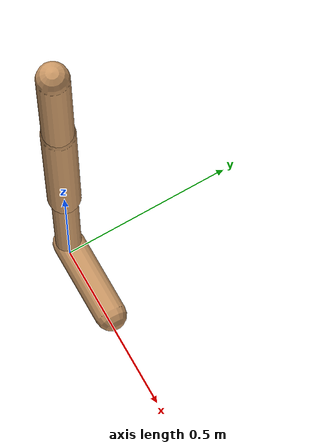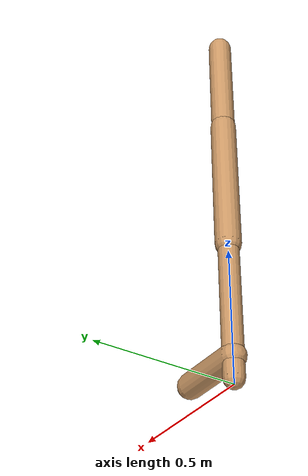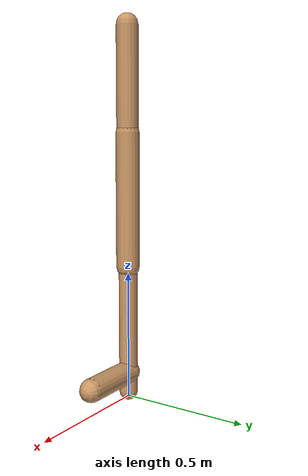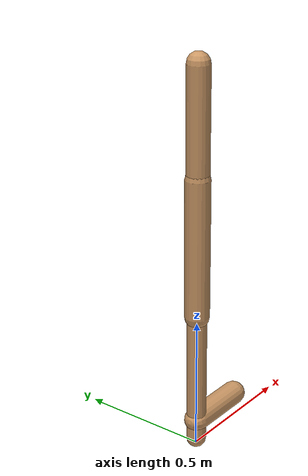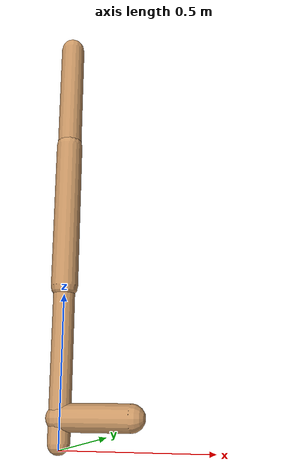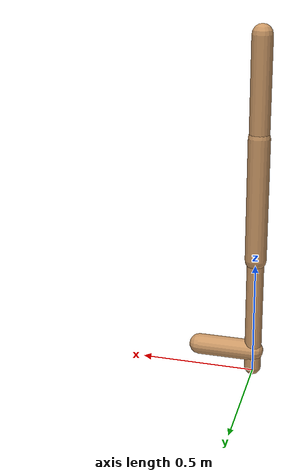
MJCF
<mujoco model="walker2d">
  <compiler angle="degree" coordinate="global" inertiafromgeom="true" />
  <default>
    <joint armature="0.01" damping=".1" limited="true" />
    <geom conaffinity="0" condim="3" contype="1" density="1000" friction="0.8 .1 .1" rgba="0.8 0.6 .4 1" />
  </default>
  <option integrator="RK4" timestep="0.002" />
  <worldbody>

    <body name="torso" pos="0 0 0.14875066055504363">
      <joint armature="0" axis="1 0 0" damping="0" limited="false" name="ignorex" pos="0 0 0" stiffness="0" type="slide" />
      <joint armature="0" axis="0 0 1" damping="0" limited="false" name="ignorez" pos="0 0 0" ref="1.25" stiffness="0" type="slide" />
      <joint armature="0" axis="0 1 0" damping="0" limited="false" name="ignorey" pos="0 0 0" stiffness="0" type="hinge" />
      <geom fromto="0 0 1.45 0 0 1.05" name="torso_geom" size="0.04220514203630125" type="capsule" />
      <body name="thigh">
        <joint axis="0 -1 0" name="thigh_joint" pos="0 0 1.05" range="-150 0" type="hinge" />
        <geom fromto="0.0 0.0 1.05 0.0 0.0 0.5295391607897162" name="thigh_geom" size="0.04578184803139732" type="capsule" />
        <body name="leg" pos="0.0 0.0 -0.07046083921028379">
          <joint axis="0 -1 0" name="leg_joint" pos="0 0 0.6" range="-150 0" type="hinge" />
          <geom fromto="0.0 0.0 0.6 0.0 0.0 0.021710178655240206" name="leg_geom" size="0.03662547842511786" type="capsule" />
          <body name="foot" pos="0.0 0.0 -0.0782898213447598">
            <joint axis="0 -1 0" name="foot_joint" pos="0 0 0.1" range="-45 45" type="hinge" />
            <geom fromto="-0.0 0.0 0.1 0.2395137494062104 0.0 0.1" name="foot_geom" size="0.045095413585556826" type="capsule" />
          </body>
        </body>
      </body>

      <body name="thigh_left">
        <joint axis="0 -1 0" name="thigh_left_joint" pos="0 0 1.05" range="-150 0" type="hinge" />
        <geom fromto="0.0 0.0 1.05 0.0 0.0 0.5295391607897162" name="thigh_left_geom" rgba=".7 .3 .6 1" size="0.04578184803139732" type="capsule" />
        <body name="leg_left" pos="0.0 0.0 -0.07046083921028379">
          <joint axis="0 -1 0" name="leg_left_joint" pos="0 0 0.6" range="-150 0" type="hinge" />
          <geom fromto="0.0 0.0 0.6 0.0 0.0 0.021710178655240206" name="leg_left_geom" rgba=".7 .3 .6 1" size="0.03662547842511786" type="capsule" />
          <body name="foot_left" pos="0.0 0.0 -0.0782898213447598">
            <joint axis="0 -1 0" name="foot_left_joint" pos="0 0 0.1" range="-45 45" type="hinge" />
            <geom fromto="-0.0 0.0 0.1 0.2395137494062104 0.0 0.1" name="foot_left_geom" rgba=".7 .3 .6 1" size="0.045095413585556826" type="capsule" />
          </body>
        </body>
      </body>
    </body>
  </worldbody>
  <actuator>

    <motor ctrllimited="true" ctrlrange="-1.0 1.0" gear="100" joint="thigh_joint" />
    <motor ctrllimited="true" ctrlrange="-1.0 1.0" gear="100" joint="leg_joint" />
    <motor ctrllimited="true" ctrlrange="-1.0 1.0" gear="100" joint="foot_joint" />
    <motor ctrllimited="true" ctrlrange="-1.0 1.0" gear="100" joint="thigh_left_joint" />
    <motor ctrllimited="true" ctrlrange="-1.0 1.0" gear="100" joint="leg_left_joint" />
    <motor ctrllimited="true" ctrlrange="-1.0 1.0" gear="100" joint="foot_left_joint" />

  </actuator>
</mujoco>
